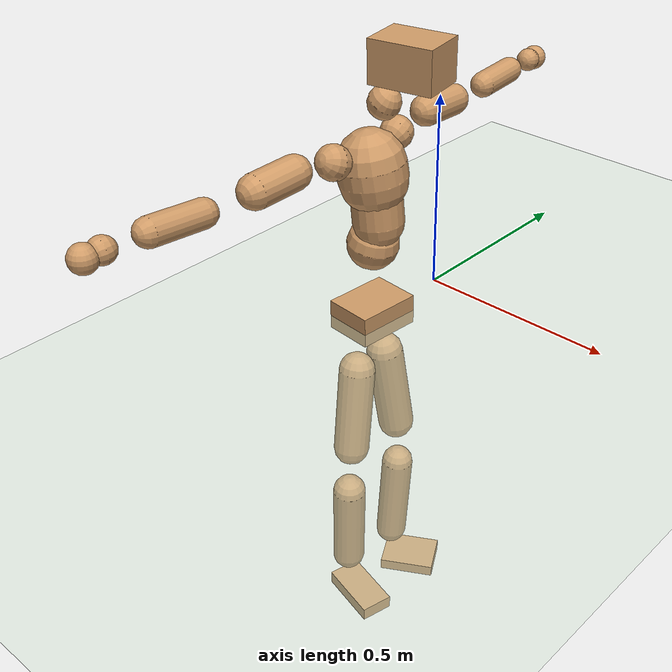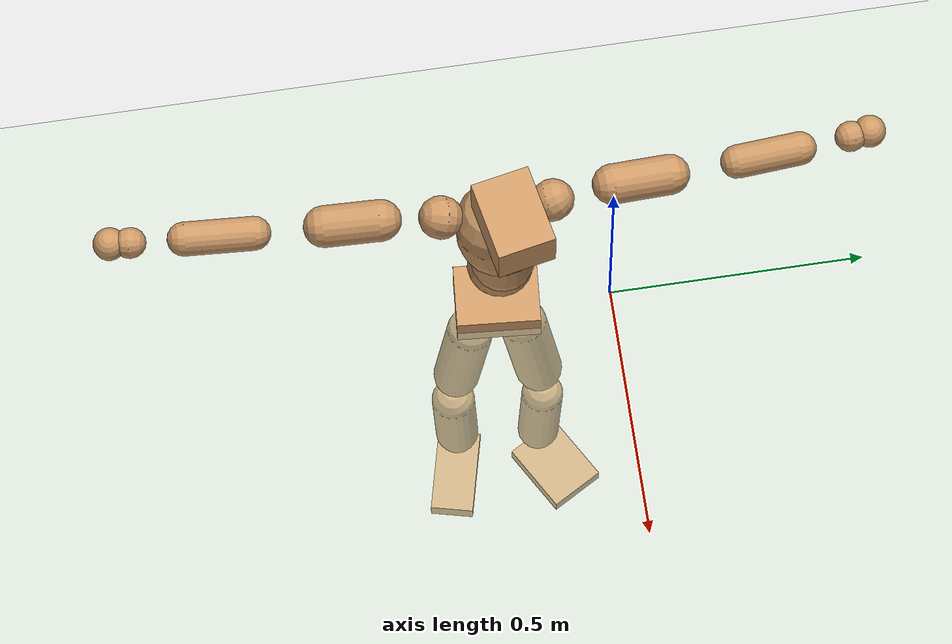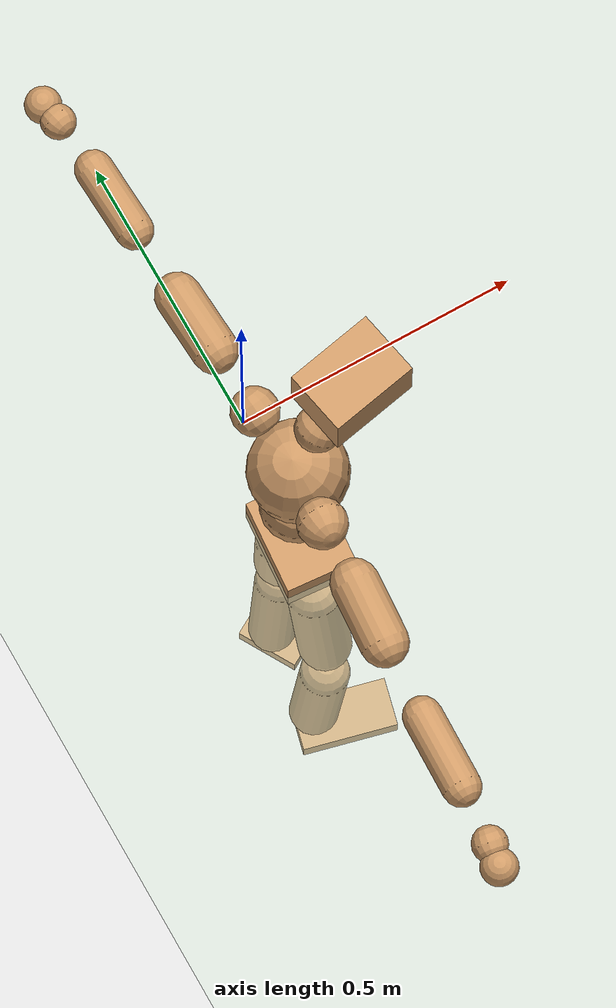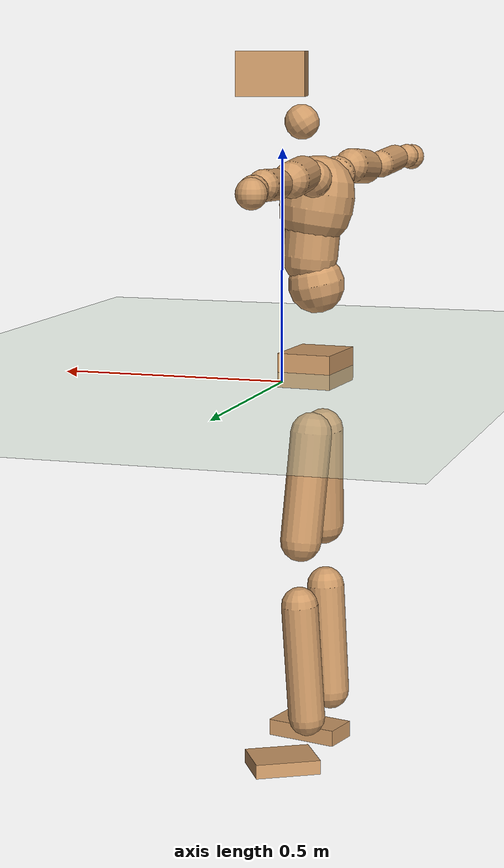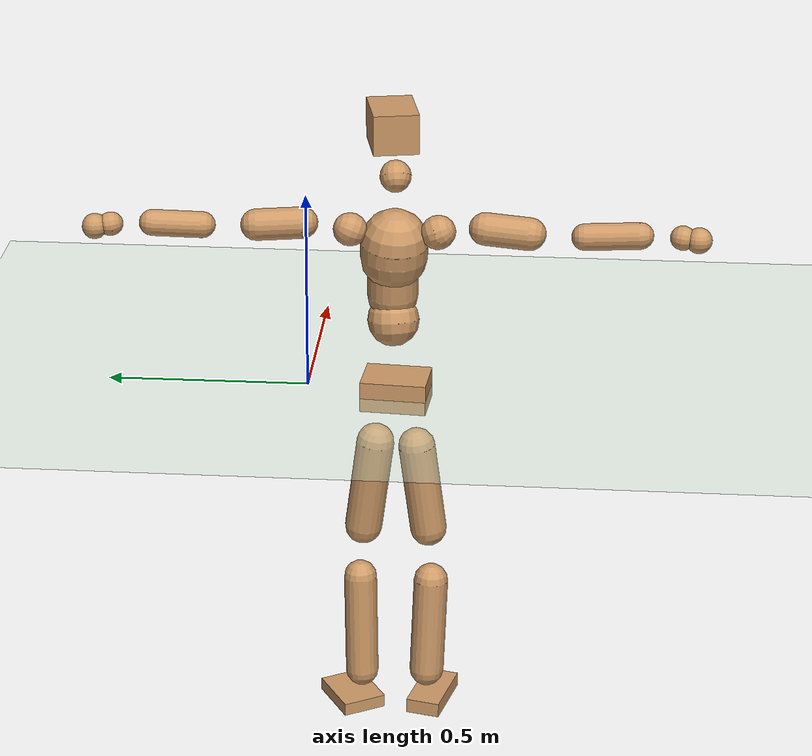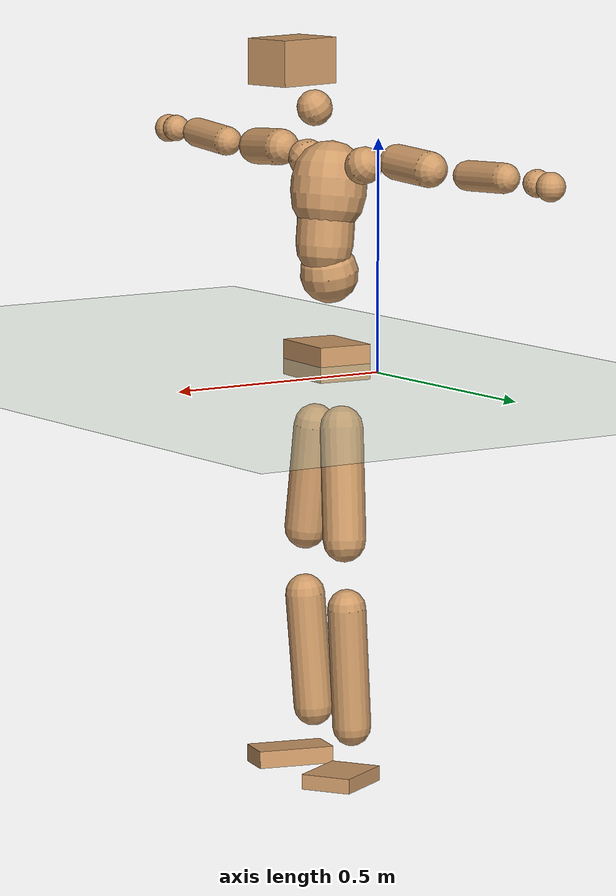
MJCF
<mujoco model="humanoid">
  <compiler coordinate="local" angle="radian"/>
  <default>
    <joint damping="0.0" armature="0.01" stiffness="0.0" limited="true"/>
    <geom conaffinity="1" condim="3" contype="7" margin="0.001" rgba="0.8 0.6 .4 1"/>
  </default>
  <asset>
    <texture type="skybox" builtin="gradient" rgb1=".4 .5 .6" rgb2="0 0 0" width="100" height="100"/>
    <texture builtin="flat" height="1278" mark="cross" markrgb="1 1 1" name="texgeom" random="0.01" rgb1="0.8 0.6 0.4" rgb2="0.8 0.6 0.4" type="cube" width="127"/>
    <texture builtin="checker" height="100" name="texplane" rgb1="0 0 0" rgb2="0.8 0.8 0.8" type="2d" width="100"/>
    <material name="MatPlane" reflectance="0.5" shininess="1" specular="1" texrepeat="60 60" texture="texplane"/>
    <material name="geom" texture="texgeom" texuniform="true"/>
  </asset>
  <worldbody>
    <light cutoff="100" diffuse="1 1 1" dir="-0 0 -1.3" directional="true" exponent="1" pos="0 0 1.3" specular=".1 .1 .1"/>
    <geom conaffinity="1" condim="3" name="floor" pos="0 0 0" rgba="0.8 0.9 0.8 1" size="100 100 .2" type="plane" material="MatPlane"/>
    <body name="Pelvis" pos="-0.0049 -0.2213 0.0093">
      <freejoint name="Pelvis"/>
      <geom type="box" contype="1" conaffinity="1" density="5359.374813" pos="-0.0103 0.0008 -0.0076" size="0.0615 0.0817 0.0383" quat="0.9993 0.0000 0.0000 -0.0378" name="Pelvis"/>
      <body name="L_Hip" pos="-0.0191 0.042 -0.0743">
        <joint name="L_Hip_x" type="hinge" pos="0 0 0" axis="1 0 0" stiffness="1600" damping="160" armature="0.02" range="-180.0000 180.0000"/>
        <joint name="L_Hip_y" type="hinge" pos="0 0 0" axis="0 1 0" stiffness="1600" damping="160" armature="0.02" range="-180.0000 180.0000"/>
        <joint name="L_Hip_z" type="hinge" pos="0 0 0" axis="0 0 1" stiffness="1600" damping="160" armature="0.02" range="-180.0000 180.0000"/>
        <geom type="capsule" contype="1" conaffinity="1" density="2040.816327" size="0.047" fromto="0.0043 0.0099 -0.0763 0.0180 0.0415 -0.3193" name="L_Hip"/>
        <body name="L_Knee" pos="0.0224 0.0514 -0.3956">
          <joint name="L_Knee_x" type="hinge" pos="0 0 0" axis="1 0 0" stiffness="1600" damping="160" armature="0.02" range="-180.0000 180.0000"/>
          <joint name="L_Knee_y" type="hinge" pos="0 0 0" axis="0 1 0" stiffness="1600" damping="160" armature="0.02" range="-180.0000 180.0000"/>
          <joint name="L_Knee_z" type="hinge" pos="0 0 0" axis="0 0 1" stiffness="1600" damping="160" armature="0.02" range="-180.0000 180.0000"/>
          <geom type="capsule" contype="1" conaffinity="1" density="1234.567901" size="0.0419" fromto="-0.0046 -0.0014 -0.0717 -0.0214 -0.0067 -0.3360" name="L_Knee"/>
          <body name="L_Ankle" pos="-0.026 -0.0082 -0.4077">
            <joint name="L_Ankle_x" type="hinge" pos="0 0 0" axis="1 0 0" stiffness="1600" damping="160" armature="0.02" range="-180.0000 180.0000"/>
            <joint name="L_Ankle_y" type="hinge" pos="0 0 0" axis="0 1 0" stiffness="1600" damping="160" armature="0.02" range="-180.0000 180.0000"/>
            <joint name="L_Ankle_z" type="hinge" pos="0 0 0" axis="0 0 1" stiffness="1600" damping="160" armature="0.02" range="-180.0000 180.0000"/>
            <geom type="box" contype="1" conaffinity="1" density="1000.000027" pos="0.0534 0.0308 -0.0298" size="0.0749 0.0567 0.0163" quat="0.9659 0.0000 0.0000 0.2588" name="L_Ankle"/>
            <body name="L_Toe" pos="0.1068 0.0617 -0.0597">
              <joint name="L_Toe_x" type="hinge" pos="0 0 0" axis="1 0 0" stiffness="1000" damping="100" armature="0.02" range="-180.0000 180.0000"/>
              <joint name="L_Toe_y" type="hinge" pos="0 0 0" axis="0 1 0" stiffness="1000" damping="100" armature="0.02" range="-180.0000 180.0000"/>
              <joint name="L_Toe_z" type="hinge" pos="0 0 0" axis="0 0 1" stiffness="1000" damping="100" armature="0.02" range="-180.0000 180.0000"/>
              <geom type="box" contype="1" conaffinity="1" density="6330144.333007" pos="0.0000 0.0000 0.0349" size="0.0009 0.0025 0.0011" quat="0.9652 0.0000 0.0000 0.2616" name="L_Toe"/>
            </body>
          </body>
        </body>
      </body>
      <body name="R_Hip" pos="-0.016 -0.0418 -0.0829">
        <joint name="R_Hip_x" type="hinge" pos="0 0 0" axis="1 0 0" stiffness="1600" damping="160" armature="0.02" range="-180.0000 180.0000"/>
        <joint name="R_Hip_y" type="hinge" pos="0 0 0" axis="0 1 0" stiffness="1600" damping="160" armature="0.02" range="-180.0000 180.0000"/>
        <joint name="R_Hip_z" type="hinge" pos="0 0 0" axis="0 0 1" stiffness="1600" damping="160" armature="0.02" range="-180.0000 180.0000"/>
        <geom type="capsule" contype="1" conaffinity="1" density="2040.816327" size="0.0461" fromto="0.0014 -0.0099 -0.0755 0.0058 -0.0404 -0.3068" name="R_Hip"/>
        <body name="R_Knee" pos="0.0072 -0.0504 -0.3823">
          <joint name="R_Knee_x" type="hinge" pos="0 0 0" axis="1 0 0" stiffness="1600" damping="160" armature="0.02" range="-180.0000 180.0000"/>
          <joint name="R_Knee_y" type="hinge" pos="0 0 0" axis="0 1 0" stiffness="1600" damping="160" armature="0.02" range="-180.0000 180.0000"/>
          <joint name="R_Knee_z" type="hinge" pos="0 0 0" axis="0 0 1" stiffness="1600" damping="160" armature="0.02" range="-180.0000 180.0000"/>
          <geom type="capsule" contype="1" conaffinity="1" density="1234.567901" size="0.0434" fromto="-0.0047 0.0024 -0.0732 -0.0209 0.0108 -0.3254" name="R_Knee"/>
          <body name="R_Ankle" pos="-0.0256 0.0133 -0.3986">
            <joint name="R_Ankle_x" type="hinge" pos="0 0 0" axis="1 0 0" stiffness="1600" damping="160" armature="0.02" range="-180.0000 180.0000"/>
            <joint name="R_Ankle_y" type="hinge" pos="0 0 0" axis="0 1 0" stiffness="1600" damping="160" armature="0.02" range="-180.0000 180.0000"/>
            <joint name="R_Ankle_z" type="hinge" pos="0 0 0" axis="0 0 1" stiffness="1600" damping="160" armature="0.02" range="-180.0000 180.0000"/>
            <geom type="box" contype="1" conaffinity="1" density="1000.000028" pos="0.0586 -0.0143 -0.0300" size="0.0851 0.0434 0.0188" quat="0.9928 0.0000 0.0000 -0.1198" name="R_Ankle"/>
            <body name="R_Toe" pos="0.1172 -0.0287 -0.0599">
              <joint name="R_Toe_x" type="hinge" pos="0 0 0" axis="1 0 0" stiffness="1000" damping="100" armature="0.02" range="-180.0000 180.0000"/>
              <joint name="R_Toe_y" type="hinge" pos="0 0 0" axis="0 1 0" stiffness="1000" damping="100" armature="0.02" range="-180.0000 180.0000"/>
              <joint name="R_Toe_z" type="hinge" pos="0 0 0" axis="0 0 1" stiffness="1000" damping="100" armature="0.02" range="-180.0000 180.0000"/>
              <geom type="box" contype="1" conaffinity="1" density="8847190.848708" pos="0.0000 0.0000 0.0324" size="0.0008 0.0021 0.0011" quat="0.9939 0.0000 0.0000 -0.1099" name="R_Toe"/>
            </body>
          </body>
        </body>
      </body>
      <body name="Torso" pos="-0.0265 0.0045 0.1116">
        <joint name="Torso_x" type="hinge" pos="0 0 0" axis="1 0 0" stiffness="2000" damping="200" armature="0.02" range="-180.0000 180.0000"/>
        <joint name="Torso_y" type="hinge" pos="0 0 0" axis="0 1 0" stiffness="2000" damping="200" armature="0.02" range="-180.0000 180.0000"/>
        <joint name="Torso_z" type="hinge" pos="0 0 0" axis="0 0 1" stiffness="2000" damping="200" armature="0.02" range="-180.0000 180.0000"/>
        <geom type="capsule" contype="1" conaffinity="1" density="2040.816327" size="0.0639" fromto="0.0136 0.0030 0.0681 0.0140 0.0031 0.0700" name="Torso"/>
        <body name="Spine" pos="0.0276 0.006 0.1381">
          <joint name="Spine_x" type="hinge" pos="0 0 0" axis="1 0 0" stiffness="2000" damping="200" armature="0.02" range="-180.0000 180.0000"/>
          <joint name="Spine_y" type="hinge" pos="0 0 0" axis="0 1 0" stiffness="2000" damping="200" armature="0.02" range="-180.0000 180.0000"/>
          <joint name="Spine_z" type="hinge" pos="0 0 0" axis="0 0 1" stiffness="2000" damping="200" armature="0.02" range="-180.0000 180.0000"/>
          <geom type="capsule" contype="1" conaffinity="1" density="2040.816327" size="0.0623" fromto="-0.0055 -0.0009 0.0620 0.0007 0.0001 -0.0080" name="Spine"/>
          <body name="Chest" pos="-0.0048 -0.0007 0.054">
            <joint name="Chest_x" type="hinge" pos="0 0 0" axis="1 0 0" stiffness="2000" damping="200" armature="0.02" range="-180.0000 180.0000"/>
            <joint name="Chest_y" type="hinge" pos="0 0 0" axis="0 1 0" stiffness="2000" damping="200" armature="0.02" range="-180.0000 180.0000"/>
            <joint name="Chest_z" type="hinge" pos="0 0 0" axis="0 0 1" stiffness="2000" damping="200" armature="0.02" range="-180.0000 180.0000"/>
            <geom type="capsule" contype="1" conaffinity="1" density="2040.816327" size="0.0826" fromto="-0.0116 -0.0049 0.0816 -0.0063 -0.0027 0.0445" name="Chest"/>
            <body name="Neck" pos="-0.0055 -0.0098 0.1847">
              <joint name="Neck_x" type="hinge" pos="0 0 0" axis="1 0 0" stiffness="1000" damping="100" armature="0.02" range="-180.0000 180.0000"/>
              <joint name="Neck_y" type="hinge" pos="0 0 0" axis="0 1 0" stiffness="1000" damping="100" armature="0.02" range="-180.0000 180.0000"/>
              <joint name="Neck_z" type="hinge" pos="0 0 0" axis="0 0 1" stiffness="1000" damping="100" armature="0.02" range="-180.0000 180.0000"/>
              <geom type="capsule" contype="1" conaffinity="1" density="1000" size="0.0384" fromto="0.0319 0.0056 0.0512 0.0330 0.0058 0.0529" name="Neck"/>
              <body name="Head" pos="0.0649 0.0113 0.1042">
                <joint name="Head_x" type="hinge" pos="0 0 0" axis="1 0 0" stiffness="1000" damping="100" armature="0.02" range="-180.0000 180.0000"/>
                <joint name="Head_y" type="hinge" pos="0 0 0" axis="0 1 0" stiffness="1000" damping="100" armature="0.02" range="-180.0000 180.0000"/>
                <joint name="Head_z" type="hinge" pos="0 0 0" axis="0 0 1" stiffness="1000" damping="100" armature="0.02" range="-180.0000 180.0000"/>
                <geom type="box" contype="1" conaffinity="1" density="2250.000025" pos="0.0334 0.0067 0.0531" size="0.0761 0.0556 0.0494" quat="0.9952 0.0000 0.0000 0.0983" name="Head"/>
              </body>
            </body>
            <body name="L_Thorax" pos="-0.0238 0.0545 0.0973">
              <joint name="L_Thorax_x" type="hinge" pos="0 0 0" axis="1 0 0" stiffness="1000" damping="100" armature="0.02" range="-180.0000 180.0000"/>
              <joint name="L_Thorax_y" type="hinge" pos="0 0 0" axis="0 1 0" stiffness="1000" damping="100" armature="0.02" range="-180.0000 180.0000"/>
              <joint name="L_Thorax_z" type="hinge" pos="0 0 0" axis="0 0 1" stiffness="1000" damping="100" armature="0.02" range="-180.0000 180.0000"/>
              <geom type="capsule" contype="1" conaffinity="1" density="1000" size="0.0406" fromto="-0.0048 0.0457 0.0204 -0.0050 0.0475 0.0212" name="L_Thorax"/>
              <body name="L_Shoulder" pos="-0.0098 0.0932 0.0416">
                <joint name="L_Shoulder_x" type="hinge" pos="0 0 0" axis="1 0 0" stiffness="1000" damping="100" armature="0.02" range="-720.0000 720.0000"/>
                <joint name="L_Shoulder_y" type="hinge" pos="0 0 0" axis="0 1 0" stiffness="1000" damping="100" armature="0.02" range="-720.0000 720.0000"/>
                <joint name="L_Shoulder_z" type="hinge" pos="0 0 0" axis="0 0 1" stiffness="1000" damping="100" armature="0.02" range="-720.0000 720.0000"/>
                <geom type="capsule" contype="1" conaffinity="1" density="1000" size="0.0386" fromto="-0.0036 0.0684 -0.0039 -0.0095 0.1787 -0.0102" name="L_Shoulder"/>
                <body name="L_Elbow" pos="-0.0131 0.2471 -0.0141">
                  <joint name="L_Elbow_x" type="hinge" pos="0 0 0" axis="1 0 0" stiffness="1000" damping="100" armature="0.02" range="-720.0000 720.0000"/>
                  <joint name="L_Elbow_y" type="hinge" pos="0 0 0" axis="0 1 0" stiffness="1000" damping="100" armature="0.02" range="-720.0000 720.0000"/>
                  <joint name="L_Elbow_z" type="hinge" pos="0 0 0" axis="0 0 1" stiffness="1000" damping="100" armature="0.02" range="-720.0000 720.0000"/>
                  <geom type="capsule" contype="1" conaffinity="1" density="1000" size="0.032" fromto="-0.0038 0.0618 0.0025 -0.0110 0.1821 0.0073" name="L_Elbow"/>
                  <body name="L_Wrist" pos="-0.0148 0.2439 0.0097">
                    <joint name="L_Wrist_x" type="hinge" pos="0 0 0" axis="1 0 0" stiffness="600" damping="60" armature="0.02" range="-180.0000 180.0000"/>
                    <joint name="L_Wrist_y" type="hinge" pos="0 0 0" axis="0 1 0" stiffness="600" damping="60" armature="0.02" range="-180.0000 180.0000"/>
                    <joint name="L_Wrist_z" type="hinge" pos="0 0 0" axis="0 0 1" stiffness="600" damping="60" armature="0.02" range="-180.0000 180.0000"/>
                    <geom type="capsule" contype="1" conaffinity="1" density="1000" size="0.0292" fromto="-0.0067 0.0367 -0.0044 -0.0071 0.0387 -0.0047" name="L_Wrist"/>
                    <body name="L_Hand" pos="-0.0138 0.0754 -0.0091">
                      <joint name="L_Hand_x" type="hinge" pos="0 0 0" axis="1 0 0" stiffness="600" damping="60" armature="0.02" range="-180.0000 180.0000"/>
                      <joint name="L_Hand_y" type="hinge" pos="0 0 0" axis="0 1 0" stiffness="600" damping="60" armature="0.02" range="-180.0000 180.0000"/>
                      <joint name="L_Hand_z" type="hinge" pos="0 0 0" axis="0 0 1" stiffness="600" damping="60" armature="0.02" range="-180.0000 180.0000"/>
                      <geom type="sphere" contype="1" conaffinity="1" density="1000" size="0.0309" pos="0.0000 0.0000 0.0000" name="L_Hand"/>
                    </body>
                  </body>
                </body>
              </body>
            </body>
            <body name="R_Thorax" pos="-0.0247 -0.0675 0.0962">
              <joint name="R_Thorax_x" type="hinge" pos="0 0 0" axis="1 0 0" stiffness="1000" damping="100" armature="0.02" range="-180.0000 180.0000"/>
              <joint name="R_Thorax_y" type="hinge" pos="0 0 0" axis="0 1 0" stiffness="1000" damping="100" armature="0.02" range="-180.0000 180.0000"/>
              <joint name="R_Thorax_z" type="hinge" pos="0 0 0" axis="0 0 1" stiffness="1000" damping="100" armature="0.02" range="-180.0000 180.0000"/>
              <geom type="capsule" contype="1" conaffinity="1" density="1000" size="0.0418" fromto="-0.0010 -0.0430 0.0191 -0.0011 -0.0448 0.0199" name="R_Thorax"/>
              <body name="R_Shoulder" pos="-0.0021 -0.0878 0.0389">
                <joint name="R_Shoulder_x" type="hinge" pos="0 0 0" axis="1 0 0" stiffness="1000" damping="100" armature="0.02" range="-720.0000 720.0000"/>
                <joint name="R_Shoulder_y" type="hinge" pos="0 0 0" axis="0 1 0" stiffness="1000" damping="100" armature="0.02" range="-720.0000 720.0000"/>
                <joint name="R_Shoulder_z" type="hinge" pos="0 0 0" axis="0 0 1" stiffness="1000" damping="100" armature="0.02" range="-720.0000 720.0000"/>
                <geom type="capsule" contype="1" conaffinity="1" density="1000" size="0.04" fromto="-0.0042 -0.0697 -0.0049 -0.0106 -0.1761 -0.0123" name="R_Shoulder"/>
                <body name="R_Elbow" pos="-0.0148 -0.2459 -0.0172">
                  <joint name="R_Elbow_x" type="hinge" pos="0 0 0" axis="1 0 0" stiffness="1000" damping="100" armature="0.02" range="-720.0000 720.0000"/>
                  <joint name="R_Elbow_y" type="hinge" pos="0 0 0" axis="0 1 0" stiffness="1000" damping="100" armature="0.02" range="-720.0000 720.0000"/>
                  <joint name="R_Elbow_z" type="hinge" pos="0 0 0" axis="0 0 1" stiffness="1000" damping="100" armature="0.02" range="-720.0000 720.0000"/>
                  <geom type="capsule" contype="1" conaffinity="1" density="1000" size="0.0325" fromto="-0.0021 -0.0623 0.0041 -0.0066 -0.1937 0.0128" name="R_Elbow"/>
                  <body name="R_Wrist" pos="-0.0087 -0.256 0.0169">
                    <joint name="R_Wrist_x" type="hinge" pos="0 0 0" axis="1 0 0" stiffness="600" damping="60" armature="0.02" range="-180.0000 180.0000"/>
                    <joint name="R_Wrist_y" type="hinge" pos="0 0 0" axis="0 1 0" stiffness="600" damping="60" armature="0.02" range="-180.0000 180.0000"/>
                    <joint name="R_Wrist_z" type="hinge" pos="0 0 0" axis="0 0 1" stiffness="600" damping="60" armature="0.02" range="-180.0000 180.0000"/>
                    <geom type="capsule" contype="1" conaffinity="1" density="1000" size="0.0296" fromto="-0.0047 -0.0377 -0.0035 -0.0050 -0.0396 -0.0037" name="R_Wrist"/>
                    <body name="R_Hand" pos="-0.0097 -0.0773 -0.0071">
                      <joint name="R_Hand_x" type="hinge" pos="0 0 0" axis="1 0 0" stiffness="600" damping="60" armature="0.02" range="-180.0000 180.0000"/>
                      <joint name="R_Hand_y" type="hinge" pos="0 0 0" axis="0 1 0" stiffness="600" damping="60" armature="0.02" range="-180.0000 180.0000"/>
                      <joint name="R_Hand_z" type="hinge" pos="0 0 0" axis="0 0 1" stiffness="600" damping="60" armature="0.02" range="-180.0000 180.0000"/>
                      <geom type="sphere" contype="1" conaffinity="1" density="1000" size="0.0313" pos="0.0000 0.0000 0.0000" name="R_Hand"/>
                    </body>
                  </body>
                </body>
              </body>
            </body>
          </body>
        </body>
      </body>
    </body>
  </worldbody>
  <actuator>
    <motor name="L_Hip_x" joint="L_Hip_x" gear="500"/>
    <motor name="L_Hip_y" joint="L_Hip_y" gear="500"/>
    <motor name="L_Hip_z" joint="L_Hip_z" gear="500"/>
    <motor name="L_Knee_x" joint="L_Knee_x" gear="500"/>
    <motor name="L_Knee_y" joint="L_Knee_y" gear="500"/>
    <motor name="L_Knee_z" joint="L_Knee_z" gear="500"/>
    <motor name="L_Ankle_x" joint="L_Ankle_x" gear="500"/>
    <motor name="L_Ankle_y" joint="L_Ankle_y" gear="500"/>
    <motor name="L_Ankle_z" joint="L_Ankle_z" gear="500"/>
    <motor name="L_Toe_x" joint="L_Toe_x" gear="500"/>
    <motor name="L_Toe_y" joint="L_Toe_y" gear="500"/>
    <motor name="L_Toe_z" joint="L_Toe_z" gear="500"/>
    <motor name="R_Hip_x" joint="R_Hip_x" gear="500"/>
    <motor name="R_Hip_y" joint="R_Hip_y" gear="500"/>
    <motor name="R_Hip_z" joint="R_Hip_z" gear="500"/>
    <motor name="R_Knee_x" joint="R_Knee_x" gear="500"/>
    <motor name="R_Knee_y" joint="R_Knee_y" gear="500"/>
    <motor name="R_Knee_z" joint="R_Knee_z" gear="500"/>
    <motor name="R_Ankle_x" joint="R_Ankle_x" gear="500"/>
    <motor name="R_Ankle_y" joint="R_Ankle_y" gear="500"/>
    <motor name="R_Ankle_z" joint="R_Ankle_z" gear="500"/>
    <motor name="R_Toe_x" joint="R_Toe_x" gear="500"/>
    <motor name="R_Toe_y" joint="R_Toe_y" gear="500"/>
    <motor name="R_Toe_z" joint="R_Toe_z" gear="500"/>
    <motor name="Torso_x" joint="Torso_x" gear="500"/>
    <motor name="Torso_y" joint="Torso_y" gear="500"/>
    <motor name="Torso_z" joint="Torso_z" gear="500"/>
    <motor name="Spine_x" joint="Spine_x" gear="500"/>
    <motor name="Spine_y" joint="Spine_y" gear="500"/>
    <motor name="Spine_z" joint="Spine_z" gear="500"/>
    <motor name="Chest_x" joint="Chest_x" gear="500"/>
    <motor name="Chest_y" joint="Chest_y" gear="500"/>
    <motor name="Chest_z" joint="Chest_z" gear="500"/>
    <motor name="Neck_x" joint="Neck_x" gear="500"/>
    <motor name="Neck_y" joint="Neck_y" gear="500"/>
    <motor name="Neck_z" joint="Neck_z" gear="500"/>
    <motor name="Head_x" joint="Head_x" gear="500"/>
    <motor name="Head_y" joint="Head_y" gear="500"/>
    <motor name="Head_z" joint="Head_z" gear="500"/>
    <motor name="L_Thorax_x" joint="L_Thorax_x" gear="500"/>
    <motor name="L_Thorax_y" joint="L_Thorax_y" gear="500"/>
    <motor name="L_Thorax_z" joint="L_Thorax_z" gear="500"/>
    <motor name="L_Shoulder_x" joint="L_Shoulder_x" gear="500"/>
    <motor name="L_Shoulder_y" joint="L_Shoulder_y" gear="500"/>
    <motor name="L_Shoulder_z" joint="L_Shoulder_z" gear="500"/>
    <motor name="L_Elbow_x" joint="L_Elbow_x" gear="500"/>
    <motor name="L_Elbow_y" joint="L_Elbow_y" gear="500"/>
    <motor name="L_Elbow_z" joint="L_Elbow_z" gear="500"/>
    <motor name="L_Wrist_x" joint="L_Wrist_x" gear="500"/>
    <motor name="L_Wrist_y" joint="L_Wrist_y" gear="500"/>
    <motor name="L_Wrist_z" joint="L_Wrist_z" gear="500"/>
    <motor name="L_Hand_x" joint="L_Hand_x" gear="500"/>
    <motor name="L_Hand_y" joint="L_Hand_y" gear="500"/>
    <motor name="L_Hand_z" joint="L_Hand_z" gear="500"/>
    <motor name="R_Thorax_x" joint="R_Thorax_x" gear="500"/>
    <motor name="R_Thorax_y" joint="R_Thorax_y" gear="500"/>
    <motor name="R_Thorax_z" joint="R_Thorax_z" gear="500"/>
    <motor name="R_Shoulder_x" joint="R_Shoulder_x" gear="500"/>
    <motor name="R_Shoulder_y" joint="R_Shoulder_y" gear="500"/>
    <motor name="R_Shoulder_z" joint="R_Shoulder_z" gear="500"/>
    <motor name="R_Elbow_x" joint="R_Elbow_x" gear="500"/>
    <motor name="R_Elbow_y" joint="R_Elbow_y" gear="500"/>
    <motor name="R_Elbow_z" joint="R_Elbow_z" gear="500"/>
    <motor name="R_Wrist_x" joint="R_Wrist_x" gear="500"/>
    <motor name="R_Wrist_y" joint="R_Wrist_y" gear="500"/>
    <motor name="R_Wrist_z" joint="R_Wrist_z" gear="500"/>
    <motor name="R_Hand_x" joint="R_Hand_x" gear="500"/>
    <motor name="R_Hand_y" joint="R_Hand_y" gear="500"/>
    <motor name="R_Hand_z" joint="R_Hand_z" gear="500"/>
  </actuator>
  <contact>
    <exclude body1="Torso" body2="Chest"/>
    <exclude body1="Head" body2="Chest"/>
    <exclude body1="R_Knee" body2="R_Toe"/>
    <exclude body1="R_Knee" body2="L_Ankle"/>
    <exclude body1="R_Knee" body2="L_Toe"/>
    <exclude body1="L_Knee" body2="L_Toe"/>
    <exclude body1="L_Knee" body2="R_Ankle"/>
    <exclude body1="L_Knee" body2="R_Toe"/>
    <exclude body1="L_Shoulder" body2="Chest"/>
    <exclude body1="R_Shoulder" body2="Chest"/>
  </contact>
  <sensor/>
  <size njmax="700" nconmax="700"/>
</mujoco>
